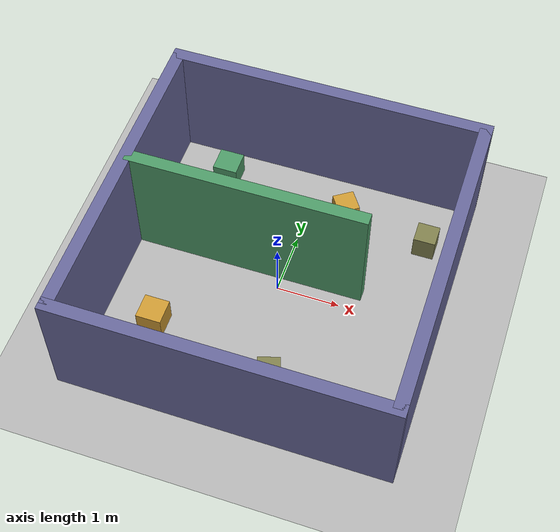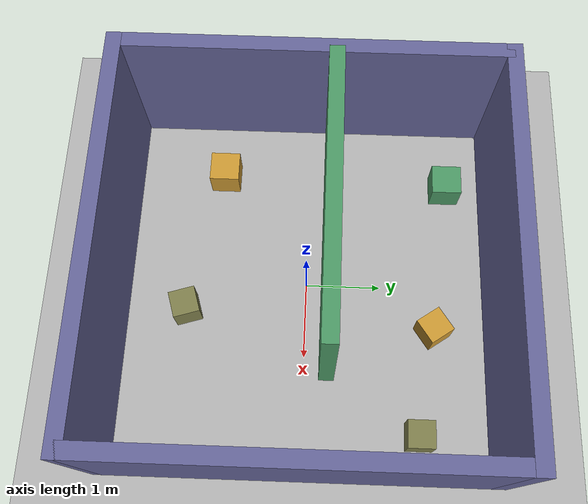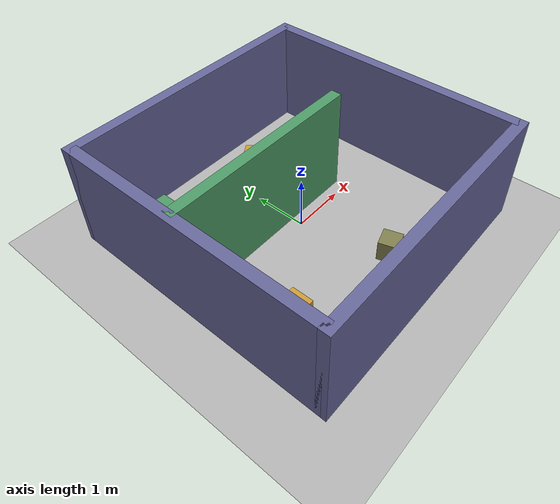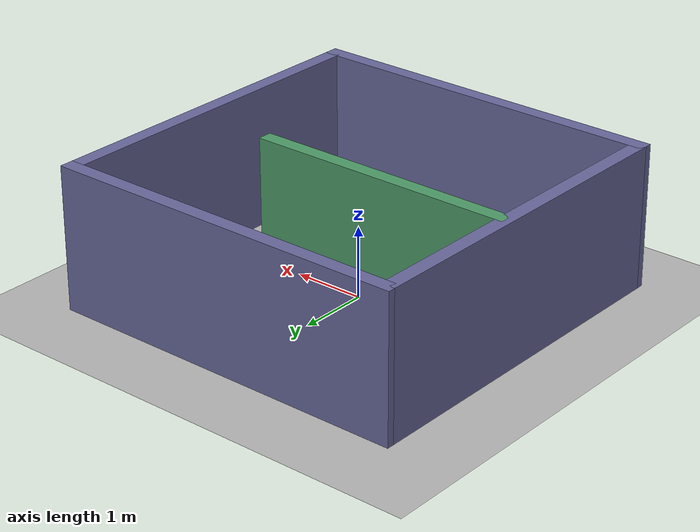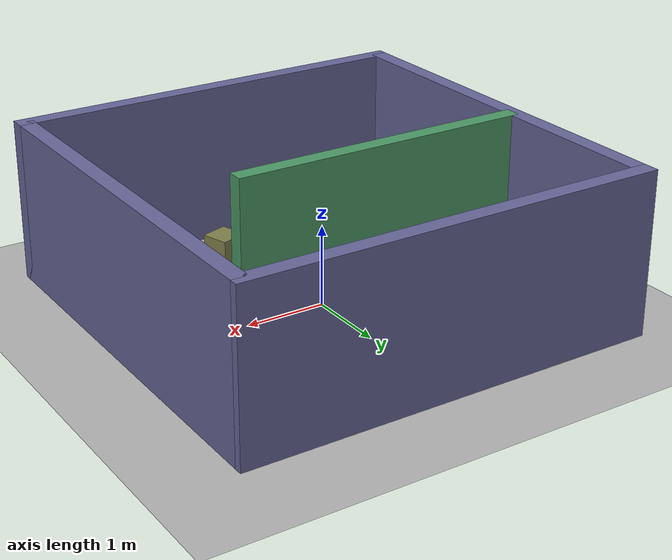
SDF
<?xml version="1.0" ?>
<sdf version='1.8'>
  <world name='bench_room_cluttered'>

    <physics name='4ms' type='ignored'>
      <max_step_size>0.004</max_step_size>
      <real_time_factor>1</real_time_factor>
    </physics>

    <plugin filename="ignition-gazebo-physics-system"
            name="ignition::gazebo::systems::Physics"/>
    <plugin filename="ignition-gazebo-user-commands-system"
            name="ignition::gazebo::systems::UserCommands"/>
    <plugin filename="ignition-gazebo-scene-broadcaster-system"
            name="ignition::gazebo::systems::SceneBroadcaster"/>
    <plugin filename="ignition-gazebo-sensors-system"
            name="ignition::gazebo::systems::Sensors">
      <render_engine>ogre2</render_engine>
    </plugin>
    <plugin filename="ignition-gazebo-contact-system"
            name="ignition::gazebo::systems::Contact"/>
    <plugin filename="ignition-gazebo-imu-system"
            name="ignition::gazebo::systems::Imu"/>

    <light name='sun' type='directional'>
      <pose>0 0 10 0 0 0</pose>
      <cast_shadows>true</cast_shadows>
      <intensity>1</intensity>
      <direction>-0.5 0.1 -0.9</direction>
      <diffuse>0.8 0.8 0.8 1</diffuse>
      <specular>0.2 0.2 0.2 1</specular>
    </light>

    <!-- Ground plane -->
    <model name='ground_plane'>
      <static>true</static>
      <link name='link'>
        <collision name='collision'>
          <geometry><plane><normal>0 0 1</normal><size>100 100</size></plane></geometry>
        </collision>
        <visual name='visual'>
          <geometry><plane><normal>0 0 1</normal><size>100 100</size></plane></geometry>
          <material>
            <ambient>0.7 0.7 0.7 1</ambient>
            <diffuse>0.7 0.7 0.7 1</diffuse>
          </material>
        </visual>
      </link>
    </model>

    <!-- North wall -->
    <model name='cb_wall_north'><static>true</static><link name='link'>
      <pose>0 2.5 1 0 0 0</pose>
      <collision name='c'><geometry><box><size>5.2 0.2 2</size></box></geometry></collision>
      <visual name='v'><geometry><box><size>5.2 0.2 2</size></box></geometry>
        <material><ambient>0.4 0.4 0.6 1</ambient><diffuse>0.4 0.4 0.6 1</diffuse></material></visual>
    </link></model>

    <!-- South wall -->
    <model name='cb_wall_south'><static>true</static><link name='link'>
      <pose>0 -2.5 1 0 0 0</pose>
      <collision name='c'><geometry><box><size>5.2 0.2 2</size></box></geometry></collision>
      <visual name='v'><geometry><box><size>5.2 0.2 2</size></box></geometry>
        <material><ambient>0.4 0.4 0.6 1</ambient><diffuse>0.4 0.4 0.6 1</diffuse></material></visual>
    </link></model>

    <!-- East wall -->
    <model name='cb_wall_east'><static>true</static><link name='link'>
      <pose>2.5 0 1 0 0 0</pose>
      <collision name='c'><geometry><box><size>0.2 5 2</size></box></geometry></collision>
      <visual name='v'><geometry><box><size>0.2 5 2</size></box></geometry>
        <material><ambient>0.4 0.4 0.6 1</ambient><diffuse>0.4 0.4 0.6 1</diffuse></material></visual>
    </link></model>

    <!-- West wall -->
    <model name='cb_wall_west'><static>true</static><link name='link'>
      <pose>-2.5 0 1 0 0 0</pose>
      <collision name='c'><geometry><box><size>0.2 5 2</size></box></geometry></collision>
      <visual name='v'><geometry><box><size>0.2 5 2</size></box></geometry>
        <material><ambient>0.4 0.4 0.6 1</ambient><diffuse>0.4 0.4 0.6 1</diffuse></material></visual>
    </link></model>

    <!-- Dividing wall, splits the room roughly in half along y=0.3,
         with a 0.9m gap on the east side (near x=1.8..2.3) so the
         robot/frontier planner has to find the single passage. -->
    <model name='cb_divider'><static>true</static><link name='link'>
      <pose>-0.6 0.3 1 0 0 0</pose>
      <collision name='c'><geometry><box><size>3.8 0.2 2</size></box></geometry></collision>
      <visual name='v'><geometry><box><size>3.8 0.2 2</size></box></geometry>
        <material><ambient>0.3 0.6 0.4 1</ambient><diffuse>0.3 0.6 0.4 1</diffuse></material></visual>
    </link></model>

    <!-- Small clutter, south half (spawn side) -->
    <model name='cb_box_1'><static>true</static><link name='link'>
      <pose>-1.6 -1.2 0.2 0 0 0</pose>
      <collision name='c'><geometry><box><size>0.4 0.4 0.4</size></box></geometry></collision>
      <visual name='v'><geometry><box><size>0.4 0.4 0.4</size></box></geometry>
        <material><ambient>0.8 0.6 0.2 1</ambient><diffuse>0.8 0.6 0.2 1</diffuse></material></visual>
    </link></model>

    <model name='cb_box_2'><static>true</static><link name='link'>
      <pose>0.4 -1.6 0.2 0 0 0.3</pose>
      <collision name='c'><geometry><box><size>0.35 0.35 0.4</size></box></geometry></collision>
      <visual name='v'><geometry><box><size>0.35 0.35 0.4</size></box></geometry>
        <material><ambient>0.5 0.5 0.3 1</ambient><diffuse>0.5 0.5 0.3 1</diffuse></material></visual>
    </link></model>

    <model name='cb_box_3'><static>true</static><link name='link'>
      <pose>2.0 1.5 0.2 0 0 0</pose>
      <collision name='c'><geometry><box><size>0.35 0.35 0.4</size></box></geometry></collision>
      <visual name='v'><geometry><box><size>0.35 0.35 0.4</size></box></geometry>
        <material><ambient>0.5 0.5 0.3 1</ambient><diffuse>0.5 0.5 0.3 1</diffuse></material></visual>
    </link></model>

    <!-- Small clutter, north half (beyond the gap) -->
    <model name='cb_box_4'><static>true</static><link name='link'>
      <pose>-1.5 1.9 0.2 0 0 0</pose>
      <collision name='c'><geometry><box><size>0.4 0.4 0.4</size></box></geometry></collision>
      <visual name='v'><geometry><box><size>0.4 0.4 0.4</size></box></geometry>
        <material><ambient>0.3 0.6 0.4 1</ambient><diffuse>0.3 0.6 0.4 1</diffuse></material></visual>
    </link></model>

    <model name='cb_box_5'><static>true</static><link name='link'>
      <pose>0.6 1.7 0.2 0 0 0.6</pose>
      <collision name='c'><geometry><box><size>0.35 0.35 0.4</size></box></geometry></collision>
      <visual name='v'><geometry><box><size>0.35 0.35 0.4</size></box></geometry>
        <material><ambient>0.8 0.6 0.2 1</ambient><diffuse>0.8 0.6 0.2 1</diffuse></material></visual>
    </link></model>

    <!-- Overview camera -->
    <model name='world_monitor_cam'>
      <static>true</static>
      <pose>0 0 5.5 0 1.5708 0</pose>
      <link name='link'>
        <sensor name='monitor_camera' type='camera'>
          <always_on>true</always_on>
          <update_rate>10</update_rate>
          <topic>world_monitor/image_raw</topic>
          <camera>
            <horizontal_fov>1.4</horizontal_fov>
            <image><width>960</width><height>540</height><format>R8G8B8</format></image>
            <clip><near>0.05</near><far>15.0</far></clip>
          </camera>
        </sensor>
      </link>
    </model>

  </world>
</sdf>
